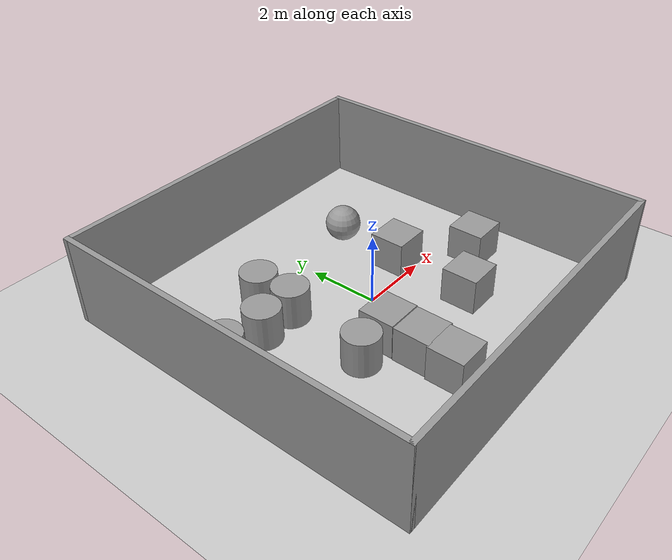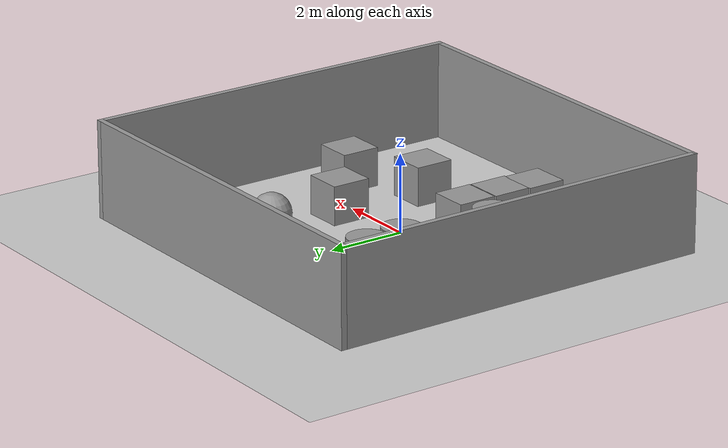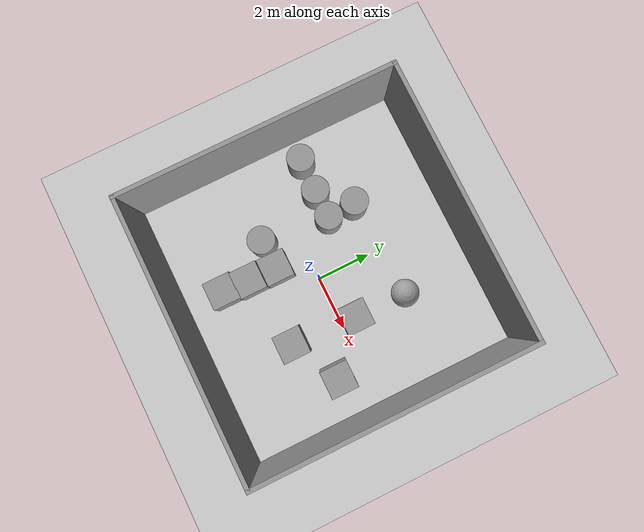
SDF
<sdf version="1.6">
 <world name="default">
  <light name="sun" type="directional">
   <pose>0 0 10 0 -0 0</pose>
   <diffuse>0.8 0.8 0.8 1</diffuse>
   <specular>0.2 0.2 0.2 1</specular>
   <attenuation>
    <range>1000</range>
    <constant>0.9</constant>
    <linear>0.01</linear>
    <quadratic>0.001</quadratic>
   </attenuation>
   <direction>-0.5 0.1 -0.9</direction>
  </light>
  <model name="ground_plane">
   <static>1</static>
   <link name="link">
    <collision name="collision">
     <geometry><plane><normal>0 0 1</normal><size>100 100</size></plane></geometry>
     <surface>
      <contact><collide_bitmask>65535</collide_bitmask></contact>
      <friction><ode><mu>100</mu><mu2>50</mu2></ode></friction>
     </surface>
    </collision>
    <visual name="visual">
     <cast_shadows>0</cast_shadows>
     <geometry><plane><normal>0 0 1</normal><size>100 100</size></plane></geometry>
     <material>
      <script><uri>file://media/materials/scripts/gazebo.material</uri><name>Gazebo/Grey</name></script>
     </material>
    </visual>
   </link>
  </model>
  <gravity>0 0 -9.8</gravity>
  <magnetic_field>6e-06 2.3e-05 -4.2e-05</magnetic_field>
  <atmosphere type="adiabatic"/>
  <physics name="default_physics" default="0" type="ode">
   <max_step_size>0.001</max_step_size>
   <real_time_factor>1</real_time_factor>
   <real_time_update_rate>1000</real_time_update_rate>
  </physics>
  <scene><ambient>0.4 0.4 0.4 1</ambient><background>0.7 0.7 0.7 1</background><shadows>1</shadows></scene>
  <audio><device>default</device></audio>
  <spherical_coordinates>
   <surface_model>EARTH_WGS84</surface_model>
   <latitude_deg>0</latitude_deg>
   <longitude_deg>0</longitude_deg>
   <elevation>0</elevation>
   <heading_deg>0</heading_deg>
  </spherical_coordinates>
  <model name="obstacles.sdf">
   <link name="link_0">
    <inertial>
     <mass>1</mass>
     <inertia><ixx>0.145833</ixx><ixy>0</ixy><ixz>0</ixz><iyy>0.145833</iyy><iyz>0</iyz><izz>0.125</izz></inertia>
    </inertial>
    <pose>-1.20121 1.37932 0 0 -0 0</pose>
    <visual name="visual">
     <geometry><cylinder><radius>0.5</radius><length>1</length></cylinder></geometry>
     <material>
      <lighting>1</lighting>
      <script><uri>file://media/materials/scripts/gazebo.material</uri><name>Gazebo/Grey</name></script>
     </material>
    </visual>
    <collision name="collision">
     <geometry><cylinder><radius>0.5</radius><length>1</length></cylinder></geometry>
     <surface>
      <friction>
       <ode><mu>1</mu><mu2>1</mu2><fdir1>0 0 0</fdir1><slip1>0</slip1><slip2>0</slip2></ode>
       <torsional>
        <coefficient>1</coefficient>
        <patch_radius>0</patch_radius>
        <surface_radius>0</surface_radius>
        <use_patch_radius>1</use_patch_radius>
        <ode><slip>0</slip></ode>
       </torsional>
      </friction>
      <bounce><restitution_coefficient>0</restitution_coefficient><threshold>1e+06</threshold></bounce>
      <contact>
       <collide_without_contact>0</collide_without_contact>
       <collide_without_contact_bitmask>1</collide_without_contact_bitmask>
       <collide_bitmask>1</collide_bitmask>
       <ode>
        <soft_cfm>0</soft_cfm>
        <soft_erp>0.2</soft_erp>
        <kp>1e+13</kp>
        <kd>1</kd>
        <max_vel>0.01</max_vel>
        <min_depth>0</min_depth>
       </ode>
       <bullet>
        <split_impulse>1</split_impulse>
        <split_impulse_penetration_threshold>-0.01</split_impulse_penetration_threshold>
        <soft_cfm>0</soft_cfm>
        <soft_erp>0.2</soft_erp>
        <kp>1e+13</kp>
        <kd>1</kd>
       </bullet>
      </contact>
     </surface>
    </collision>
   </link>
   <link name="link_1">
    <inertial>
     <mass>1</mass>
     <inertia><ixx>0.145833</ixx><ixy>0</ixy><ixz>0</ixz><iyy>0.145833</iyy><iyz>0</iyz><izz>0.125</izz></inertia>
    </inertial>
    <pose>-2.23202 1.36567 0 0 -0 0</pose>
    <visual name="visual">
     <geometry><cylinder><radius>0.5</radius><length>1</length></cylinder></geometry>
     <material>
      <lighting>1</lighting>
      <script><uri>file://media/materials/scripts/gazebo.material</uri><name>Gazebo/Grey</name></script>
     </material>
    </visual>
    <collision name="collision">
     <geometry><cylinder><radius>0.5</radius><length>1</length></cylinder></geometry>
     <surface>
      <friction>
       <ode><mu>1</mu><mu2>1</mu2><fdir1>0 0 0</fdir1><slip1>0</slip1><slip2>0</slip2></ode>
       <torsional>
        <coefficient>1</coefficient>
        <patch_radius>0</patch_radius>
        <surface_radius>0</surface_radius>
        <use_patch_radius>1</use_patch_radius>
        <ode><slip>0</slip></ode>
       </torsional>
      </friction>
      <bounce><restitution_coefficient>0</restitution_coefficient><threshold>1e+06</threshold></bounce>
      <contact>
       <collide_without_contact>0</collide_without_contact>
       <collide_without_contact_bitmask>1</collide_without_contact_bitmask>
       <collide_bitmask>1</collide_bitmask>
       <ode>
        <soft_cfm>0</soft_cfm>
        <soft_erp>0.2</soft_erp>
        <kp>1e+13</kp>
        <kd>1</kd>
        <max_vel>0.01</max_vel>
        <min_depth>0</min_depth>
       </ode>
       <bullet>
        <split_impulse>1</split_impulse>
        <split_impulse_penetration_threshold>-0.01</split_impulse_penetration_threshold>
        <soft_cfm>0</soft_cfm>
        <soft_erp>0.2</soft_erp>
        <kp>1e+13</kp>
        <kd>1</kd>
       </bullet>
      </contact>
     </surface>
    </collision>
   </link>
   <link name="link_11">
    <inertial>
     <mass>1</mass>
     <inertia><ixx>0.1</ixx><ixy>0</ixy><ixz>0</ixz><iyy>0.1</iyy><iyz>0</iyz><izz>0.1</izz></inertia>
    </inertial>
    <pose>2.37549 2.61411 0 0 -0 0</pose>
    <visual name="visual">
     <geometry><sphere><radius>0.5</radius></sphere></geometry>
     <material>
      <lighting>1</lighting>
      <script><uri>file://media/materials/scripts/gazebo.material</uri><name>Gazebo/Grey</name></script>
     </material>
    </visual>
    <collision name="collision">
     <geometry><sphere><radius>0.5</radius></sphere></geometry>
     <surface>
      <friction>
       <ode><mu>1</mu><mu2>1</mu2><fdir1>0 0 0</fdir1><slip1>0</slip1><slip2>0</slip2></ode>
       <torsional>
        <coefficient>1</coefficient>
        <patch_radius>0</patch_radius>
        <surface_radius>0</surface_radius>
        <use_patch_radius>1</use_patch_radius>
        <ode><slip>0</slip></ode>
       </torsional>
      </friction>
      <bounce><restitution_coefficient>0</restitution_coefficient><threshold>1e+06</threshold></bounce>
      <contact>
       <collide_without_contact>0</collide_without_contact>
       <collide_without_contact_bitmask>1</collide_without_contact_bitmask>
       <collide_bitmask>1</collide_bitmask>
       <ode>
        <soft_cfm>0</soft_cfm>
        <soft_erp>0.2</soft_erp>
        <kp>1e+13</kp>
        <kd>1</kd>
        <max_vel>0.01</max_vel>
        <min_depth>0</min_depth>
       </ode>
       <bullet>
        <split_impulse>1</split_impulse>
        <split_impulse_penetration_threshold>-0.01</split_impulse_penetration_threshold>
        <soft_cfm>0</soft_cfm>
        <soft_erp>0.2</soft_erp>
        <kp>1e+13</kp>
        <kd>1</kd>
       </bullet>
      </contact>
     </surface>
    </collision>
   </link>
   <link name="link_12">
    <inertial>
     <mass>1</mass>
     <inertia>
      <ixx>0.166667</ixx>
      <ixy>0</ixy>
      <ixz>0</ixz>
      <iyy>0.166667</iyy>
      <iyz>0</iyz>
      <izz>0.166667</izz>
     </inertia>
    </inertial>
    <pose>3.98204 -0.782179 0 0 -0 0</pose>
    <visual name="visual">
     <geometry><box><size>1 1 1</size></box></geometry>
     <material>
      <lighting>1</lighting>
      <script><uri>file://media/materials/scripts/gazebo.material</uri><name>Gazebo/Grey</name></script>
     </material>
    </visual>
    <collision name="collision">
     <geometry><box><size>1 1 1</size></box></geometry>
     <surface>
      <friction>
       <ode><mu>1</mu><mu2>1</mu2><fdir1>0 0 0</fdir1><slip1>0</slip1><slip2>0</slip2></ode>
       <torsional>
        <coefficient>1</coefficient>
        <patch_radius>0</patch_radius>
        <surface_radius>0</surface_radius>
        <use_patch_radius>1</use_patch_radius>
        <ode><slip>0</slip></ode>
       </torsional>
      </friction>
      <bounce><restitution_coefficient>0</restitution_coefficient><threshold>1e+06</threshold></bounce>
      <contact>
       <collide_without_contact>0</collide_without_contact>
       <collide_without_contact_bitmask>1</collide_without_contact_bitmask>
       <collide_bitmask>1</collide_bitmask>
       <ode>
        <soft_cfm>0</soft_cfm>
        <soft_erp>0.2</soft_erp>
        <kp>1e+13</kp>
        <kd>1</kd>
        <max_vel>0.01</max_vel>
        <min_depth>0</min_depth>
       </ode>
       <bullet>
        <split_impulse>1</split_impulse>
        <split_impulse_penetration_threshold>-0.01</split_impulse_penetration_threshold>
        <soft_cfm>0</soft_cfm>
        <soft_erp>0.2</soft_erp>
        <kp>1e+13</kp>
        <kd>1</kd>
       </bullet>
      </contact>
     </surface>
    </collision>
   </link>
   <link name="link_2">
    <inertial>
     <mass>1</mass>
     <inertia><ixx>0.145833</ixx><ixy>0</ixy><ixz>0</ixz><iyy>0.145833</iyy><iyz>0</iyz><izz>0.125</izz></inertia>
    </inertial>
    <pose>-1.26719 2.41225 0 0 -0 0</pose>
    <visual name="visual">
     <geometry><cylinder><radius>0.5</radius><length>1</length></cylinder></geometry>
     <material>
      <lighting>1</lighting>
      <script><uri>file://media/materials/scripts/gazebo.material</uri><name>Gazebo/Grey</name></script>
     </material>
    </visual>
    <collision name="collision">
     <geometry><cylinder><radius>0.5</radius><length>1</length></cylinder></geometry>
     <surface>
      <friction>
       <ode><mu>1</mu><mu2>1</mu2><fdir1>0 0 0</fdir1><slip1>0</slip1><slip2>0</slip2></ode>
       <torsional>
        <coefficient>1</coefficient>
        <patch_radius>0</patch_radius>
        <surface_radius>0</surface_radius>
        <use_patch_radius>1</use_patch_radius>
        <ode><slip>0</slip></ode>
       </torsional>
      </friction>
      <bounce><restitution_coefficient>0</restitution_coefficient><threshold>1e+06</threshold></bounce>
      <contact>
       <collide_without_contact>0</collide_without_contact>
       <collide_without_contact_bitmask>1</collide_without_contact_bitmask>
       <collide_bitmask>1</collide_bitmask>
       <ode>
        <soft_cfm>0</soft_cfm>
        <soft_erp>0.2</soft_erp>
        <kp>1e+13</kp>
        <kd>1</kd>
        <max_vel>0.01</max_vel>
        <min_depth>0</min_depth>
       </ode>
       <bullet>
        <split_impulse>1</split_impulse>
        <split_impulse_penetration_threshold>-0.01</split_impulse_penetration_threshold>
        <soft_cfm>0</soft_cfm>
        <soft_erp>0.2</soft_erp>
        <kp>1e+13</kp>
        <kd>1</kd>
       </bullet>
      </contact>
     </surface>
    </collision>
   </link>
   <link name="link_3">
    <inertial>
     <mass>1</mass>
     <inertia><ixx>0.145833</ixx><ixy>0</ixy><ixz>0</ixz><iyy>0.145833</iyy><iyz>0</iyz><izz>0.125</izz></inertia>
    </inertial>
    <pose>-3.47379 1.39735 0 0 -0 0</pose>
    <visual name="visual">
     <geometry><cylinder><radius>0.5</radius><length>1</length></cylinder></geometry>
     <material>
      <lighting>1</lighting>
      <script><uri>file://media/materials/scripts/gazebo.material</uri><name>Gazebo/Grey</name></script>
     </material>
    </visual>
    <collision name="collision">
     <geometry><cylinder><radius>0.5</radius><length>1</length></cylinder></geometry>
     <surface>
      <friction>
       <ode><mu>1</mu><mu2>1</mu2><fdir1>0 0 0</fdir1><slip1>0</slip1><slip2>0</slip2></ode>
       <torsional>
        <coefficient>1</coefficient>
        <patch_radius>0</patch_radius>
        <surface_radius>0</surface_radius>
        <use_patch_radius>1</use_patch_radius>
        <ode><slip>0</slip></ode>
       </torsional>
      </friction>
      <bounce><restitution_coefficient>0</restitution_coefficient><threshold>1e+06</threshold></bounce>
      <contact>
       <collide_without_contact>0</collide_without_contact>
       <collide_without_contact_bitmask>1</collide_without_contact_bitmask>
       <collide_bitmask>1</collide_bitmask>
       <ode>
        <soft_cfm>0</soft_cfm>
        <soft_erp>0.2</soft_erp>
        <kp>1e+13</kp>
        <kd>1</kd>
        <max_vel>0.01</max_vel>
        <min_depth>0</min_depth>
       </ode>
       <bullet>
        <split_impulse>1</split_impulse>
        <split_impulse_penetration_threshold>-0.01</split_impulse_penetration_threshold>
        <soft_cfm>0</soft_cfm>
        <soft_erp>0.2</soft_erp>
        <kp>1e+13</kp>
        <kd>1</kd>
       </bullet>
      </contact>
     </surface>
    </collision>
   </link>
   <link name="link_4">
    <inertial>
     <mass>1</mass>
     <inertia><ixx>0.145833</ixx><ixy>0</ixy><ixz>0</ixz><iyy>0.145833</iyy><iyz>0</iyz><izz>0.125</izz></inertia>
    </inertial>
    <pose>-1.45913 -1.09454 0 0 -0 0</pose>
    <visual name="visual">
     <geometry><cylinder><radius>0.5</radius><length>1</length></cylinder></geometry>
     <material>
      <lighting>1</lighting>
      <script><uri>file://media/materials/scripts/gazebo.material</uri><name>Gazebo/Grey</name></script>
     </material>
    </visual>
    <collision name="collision">
     <geometry><cylinder><radius>0.5</radius><length>1</length></cylinder></geometry>
     <surface>
      <friction>
       <ode><mu>1</mu><mu2>1</mu2><fdir1>0 0 0</fdir1><slip1>0</slip1><slip2>0</slip2></ode>
       <torsional>
        <coefficient>1</coefficient>
        <patch_radius>0</patch_radius>
        <surface_radius>0</surface_radius>
        <use_patch_radius>1</use_patch_radius>
        <ode><slip>0</slip></ode>
       </torsional>
      </friction>
      <bounce><restitution_coefficient>0</restitution_coefficient><threshold>1e+06</threshold></bounce>
      <contact>
       <collide_without_contact>0</collide_without_contact>
       <collide_without_contact_bitmask>1</collide_without_contact_bitmask>
       <collide_bitmask>1</collide_bitmask>
       <ode>
        <soft_cfm>0</soft_cfm>
        <soft_erp>0.2</soft_erp>
        <kp>1e+13</kp>
        <kd>1</kd>
        <max_vel>0.01</max_vel>
        <min_depth>0</min_depth>
       </ode>
       <bullet>
        <split_impulse>1</split_impulse>
        <split_impulse_penetration_threshold>-0.01</split_impulse_penetration_threshold>
        <soft_cfm>0</soft_cfm>
        <soft_erp>0.2</soft_erp>
        <kp>1e+13</kp>
        <kd>1</kd>
       </bullet>
      </contact>
     </surface>
    </collision>
   </link>
   <link name="link_5">
    <inertial>
     <mass>1</mass>
     <inertia>
      <ixx>0.166667</ixx>
      <ixy>0</ixy>
      <ixz>0</ixz>
      <iyy>0.166667</iyy>
      <iyz>0</iyz>
      <izz>0.166667</izz>
     </inertia>
    </inertial>
    <pose>-0.396365 -1.06728 0 0 -0 0</pose>
    <visual name="visual">
     <geometry><box><size>1 1 1</size></box></geometry>
     <material>
      <lighting>1</lighting>
      <script><uri>file://media/materials/scripts/gazebo.material</uri><name>Gazebo/Grey</name></script>
     </material>
    </visual>
    <collision name="collision">
     <geometry><box><size>1 1 1</size></box></geometry>
     <surface>
      <friction>
       <ode><mu>1</mu><mu2>1</mu2><fdir1>0 0 0</fdir1><slip1>0</slip1><slip2>0</slip2></ode>
       <torsional>
        <coefficient>1</coefficient>
        <patch_radius>0</patch_radius>
        <surface_radius>0</surface_radius>
        <use_patch_radius>1</use_patch_radius>
        <ode><slip>0</slip></ode>
       </torsional>
      </friction>
      <bounce><restitution_coefficient>0</restitution_coefficient><threshold>1e+06</threshold></bounce>
      <contact>
       <collide_without_contact>0</collide_without_contact>
       <collide_without_contact_bitmask>1</collide_without_contact_bitmask>
       <collide_bitmask>1</collide_bitmask>
       <ode>
        <soft_cfm>0</soft_cfm>
        <soft_erp>0.2</soft_erp>
        <kp>1e+13</kp>
        <kd>1</kd>
        <max_vel>0.01</max_vel>
        <min_depth>0</min_depth>
       </ode>
       <bullet>
        <split_impulse>1</split_impulse>
        <split_impulse_penetration_threshold>-0.01</split_impulse_penetration_threshold>
        <soft_cfm>0</soft_cfm>
        <soft_erp>0.2</soft_erp>
        <kp>1e+13</kp>
        <kd>1</kd>
       </bullet>
      </contact>
     </surface>
    </collision>
   </link>
   <link name="link_6">
    <inertial>
     <mass>1</mass>
     <inertia>
      <ixx>0.166667</ixx>
      <ixy>0</ixy>
      <ixz>0</ixz>
      <iyy>0.166667</iyy>
      <iyz>0</iyz>
      <izz>0.166667</izz>
     </inertia>
    </inertial>
    <pose>-0.417093 -2.09387 0 0 -0 0</pose>
    <visual name="visual">
     <geometry><box><size>1 1 1</size></box></geometry>
     <material>
      <lighting>1</lighting>
      <script><uri>file://media/materials/scripts/gazebo.material</uri><name>Gazebo/Grey</name></script>
     </material>
    </visual>
    <collision name="collision">
     <geometry><box><size>1 1 1</size></box></geometry>
     <surface>
      <friction>
       <ode><mu>1</mu><mu2>1</mu2><fdir1>0 0 0</fdir1><slip1>0</slip1><slip2>0</slip2></ode>
       <torsional>
        <coefficient>1</coefficient>
        <patch_radius>0</patch_radius>
        <surface_radius>0</surface_radius>
        <use_patch_radius>1</use_patch_radius>
        <ode><slip>0</slip></ode>
       </torsional>
      </friction>
      <bounce><restitution_coefficient>0</restitution_coefficient><threshold>1e+06</threshold></bounce>
      <contact>
       <collide_without_contact>0</collide_without_contact>
       <collide_without_contact_bitmask>1</collide_without_contact_bitmask>
       <collide_bitmask>1</collide_bitmask>
       <ode>
        <soft_cfm>0</soft_cfm>
        <soft_erp>0.2</soft_erp>
        <kp>1e+13</kp>
        <kd>1</kd>
        <max_vel>0.01</max_vel>
        <min_depth>0</min_depth>
       </ode>
       <bullet>
        <split_impulse>1</split_impulse>
        <split_impulse_penetration_threshold>-0.01</split_impulse_penetration_threshold>
        <soft_cfm>0</soft_cfm>
        <soft_erp>0.2</soft_erp>
        <kp>1e+13</kp>
        <kd>1</kd>
       </bullet>
      </contact>
     </surface>
    </collision>
   </link>
   <link name="link_7">
    <inertial>
     <mass>1</mass>
     <inertia>
      <ixx>0.166667</ixx>
      <ixy>0</ixy>
      <ixz>0</ixz>
      <iyy>0.166667</iyy>
      <iyz>0</iyz>
      <izz>0.166667</izz>
     </inertia>
    </inertial>
    <pose>-0.469728 -3.07084 0 0 -0 0</pose>
    <visual name="visual">
     <geometry><box><size>1 1 1</size></box></geometry>
     <material>
      <lighting>1</lighting>
      <script><uri>file://media/materials/scripts/gazebo.material</uri><name>Gazebo/Grey</name></script>
     </material>
    </visual>
    <collision name="collision">
     <geometry><box><size>1 1 1</size></box></geometry>
     <surface>
      <friction>
       <ode><mu>1</mu><mu2>1</mu2><fdir1>0 0 0</fdir1><slip1>0</slip1><slip2>0</slip2></ode>
       <torsional>
        <coefficient>1</coefficient>
        <patch_radius>0</patch_radius>
        <surface_radius>0</surface_radius>
        <use_patch_radius>1</use_patch_radius>
        <ode><slip>0</slip></ode>
       </torsional>
      </friction>
      <bounce><restitution_coefficient>0</restitution_coefficient><threshold>1e+06</threshold></bounce>
      <contact>
       <collide_without_contact>0</collide_without_contact>
       <collide_without_contact_bitmask>1</collide_without_contact_bitmask>
       <collide_bitmask>1</collide_bitmask>
       <ode>
        <soft_cfm>0</soft_cfm>
        <soft_erp>0.2</soft_erp>
        <kp>1e+13</kp>
        <kd>1</kd>
        <max_vel>0.01</max_vel>
        <min_depth>0</min_depth>
       </ode>
       <bullet>
        <split_impulse>1</split_impulse>
        <split_impulse_penetration_threshold>-0.01</split_impulse_penetration_threshold>
        <soft_cfm>0</soft_cfm>
        <soft_erp>0.2</soft_erp>
        <kp>1e+13</kp>
        <kd>1</kd>
       </bullet>
      </contact>
     </surface>
    </collision>
   </link>
   <link name="link_8">
    <inertial>
     <mass>1</mass>
     <inertia>
      <ixx>0.166667</ixx>
      <ixy>0</ixy>
      <ixz>0</ixz>
      <iyy>0.166667</iyy>
      <iyz>0</iyz>
      <izz>0.166667</izz>
     </inertia>
    </inertial>
    <pose>2.33893 0.662296 0 0 -0 0</pose>
    <visual name="visual">
     <geometry><box><size>1 1 1</size></box></geometry>
     <material>
      <lighting>1</lighting>
      <script><uri>file://media/materials/scripts/gazebo.material</uri><name>Gazebo/Grey</name></script>
     </material>
    </visual>
    <collision name="collision">
     <geometry><box><size>1 1 1</size></box></geometry>
     <surface>
      <friction>
       <ode><mu>1</mu><mu2>1</mu2><fdir1>0 0 0</fdir1><slip1>0</slip1><slip2>0</slip2></ode>
       <torsional>
        <coefficient>1</coefficient>
        <patch_radius>0</patch_radius>
        <surface_radius>0</surface_radius>
        <use_patch_radius>1</use_patch_radius>
        <ode><slip>0</slip></ode>
       </torsional>
      </friction>
      <bounce><restitution_coefficient>0</restitution_coefficient><threshold>1e+06</threshold></bounce>
      <contact>
       <collide_without_contact>0</collide_without_contact>
       <collide_without_contact_bitmask>1</collide_without_contact_bitmask>
       <collide_bitmask>1</collide_bitmask>
       <ode>
        <soft_cfm>0</soft_cfm>
        <soft_erp>0.2</soft_erp>
        <kp>1e+13</kp>
        <kd>1</kd>
        <max_vel>0.01</max_vel>
        <min_depth>0</min_depth>
       </ode>
       <bullet>
        <split_impulse>1</split_impulse>
        <split_impulse_penetration_threshold>-0.01</split_impulse_penetration_threshold>
        <soft_cfm>0</soft_cfm>
        <soft_erp>0.2</soft_erp>
        <kp>1e+13</kp>
        <kd>1</kd>
       </bullet>
      </contact>
     </surface>
    </collision>
   </link>
   <link name="link_9">
    <inertial>
     <mass>1</mass>
     <inertia>
      <ixx>0.166667</ixx>
      <ixy>0</ixy>
      <ixz>0</ixz>
      <iyy>0.166667</iyy>
      <iyz>0</iyz>
      <izz>0.166667</izz>
     </inertia>
    </inertial>
    <pose>2.22006 -1.7223 0 0 -0 0</pose>
    <visual name="visual">
     <geometry><box><size>1 1 1</size></box></geometry>
     <material>
      <lighting>1</lighting>
      <script><uri>file://media/materials/scripts/gazebo.material</uri><name>Gazebo/Grey</name></script>
     </material>
    </visual>
    <collision name="collision">
     <geometry><box><size>1 1 1</size></box></geometry>
     <surface>
      <friction>
       <ode><mu>1</mu><mu2>1</mu2><fdir1>0 0 0</fdir1><slip1>0</slip1><slip2>0</slip2></ode>
       <torsional>
        <coefficient>1</coefficient>
        <patch_radius>0</patch_radius>
        <surface_radius>0</surface_radius>
        <use_patch_radius>1</use_patch_radius>
        <ode><slip>0</slip></ode>
       </torsional>
      </friction>
      <bounce><restitution_coefficient>0</restitution_coefficient><threshold>1e+06</threshold></bounce>
      <contact>
       <collide_without_contact>0</collide_without_contact>
       <collide_without_contact_bitmask>1</collide_without_contact_bitmask>
       <collide_bitmask>1</collide_bitmask>
       <ode>
        <soft_cfm>0</soft_cfm>
        <soft_erp>0.2</soft_erp>
        <kp>1e+13</kp>
        <kd>1</kd>
        <max_vel>0.01</max_vel>
        <min_depth>0</min_depth>
       </ode>
       <bullet>
        <split_impulse>1</split_impulse>
        <split_impulse_penetration_threshold>-0.01</split_impulse_penetration_threshold>
        <soft_cfm>0</soft_cfm>
        <soft_erp>0.2</soft_erp>
        <kp>1e+13</kp>
        <kd>1</kd>
       </bullet>
      </contact>
     </surface>
    </collision>
   </link>
   <static>0</static>
   <pose>-0.555889 -0.139591 0.5 -0 -0 -0</pose>
  </model>
  <model name="test_room.sdf">
   <pose>-0.034892 0.220266 0 0 -0 0</pose>
   <link name="Wall_0">
    <collision name="Wall_0_Collision">
     <geometry><box><size>10.15 0.15 2.5</size></box></geometry>
     <pose>0 0 1.25 0 -0 0</pose>
    </collision>
    <visual name="Wall_0_Visual">
     <pose>0 0 1.25 0 -0 0</pose>
     <geometry><box><size>10.15 0.15 2.5</size></box></geometry>
     <material>
      <script><uri>file://media/materials/scripts/gazebo.material</uri><name>Gazebo/Grey</name></script>
      <ambient>1 1 1 1</ambient>
     </material>
     <meta><layer>0</layer></meta>
    </visual>
    <pose>-5 0 0 0 -0 -1.5708</pose>
   </link>
   <link name="Wall_1">
    <collision name="Wall_1_Collision">
     <geometry><box><size>10.15 0.15 2.5</size></box></geometry>
     <pose>0 0 1.25 0 -0 0</pose>
    </collision>
    <visual name="Wall_1_Visual">
     <pose>0 0 1.25 0 -0 0</pose>
     <geometry><box><size>10.15 0.15 2.5</size></box></geometry>
     <material>
      <script><uri>file://media/materials/scripts/gazebo.material</uri><name>Gazebo/Grey</name></script>
      <ambient>1 1 1 1</ambient>
     </material>
     <meta><layer>0</layer></meta>
    </visual>
    <pose>0 -5 0 0 -0 0</pose>
   </link>
   <link name="Wall_2">
    <collision name="Wall_2_Collision">
     <geometry><box><size>10.15 0.15 2.5</size></box></geometry>
     <pose>0 0 1.25 0 -0 0</pose>
    </collision>
    <visual name="Wall_2_Visual">
     <pose>0 0 1.25 0 -0 0</pose>
     <geometry><box><size>10.15 0.15 2.5</size></box></geometry>
     <material>
      <script><uri>file://media/materials/scripts/gazebo.material</uri><name>Gazebo/Grey</name></script>
      <ambient>1 1 1 1</ambient>
     </material>
     <meta><layer>0</layer></meta>
    </visual>
    <pose>5 0 0 0 -0 1.5708</pose>
   </link>
   <link name="Wall_3">
    <collision name="Wall_3_Collision">
     <geometry><box><size>10.15 0.15 2.5</size></box></geometry>
     <pose>0 0 1.25 0 -0 0</pose>
    </collision>
    <visual name="Wall_3_Visual">
     <pose>0 0 1.25 0 -0 0</pose>
     <geometry><box><size>10.15 0.15 2.5</size></box></geometry>
     <material>
      <script><uri>file://media/materials/scripts/gazebo.material</uri><name>Gazebo/Grey</name></script>
      <ambient>1 1 1 1</ambient>
     </material>
     <meta><layer>0</layer></meta>
    </visual>
    <pose>0 5 0 0 -0 3.14159</pose>
   </link>
   <static>1</static>
  </model>
 </world>
</sdf>
